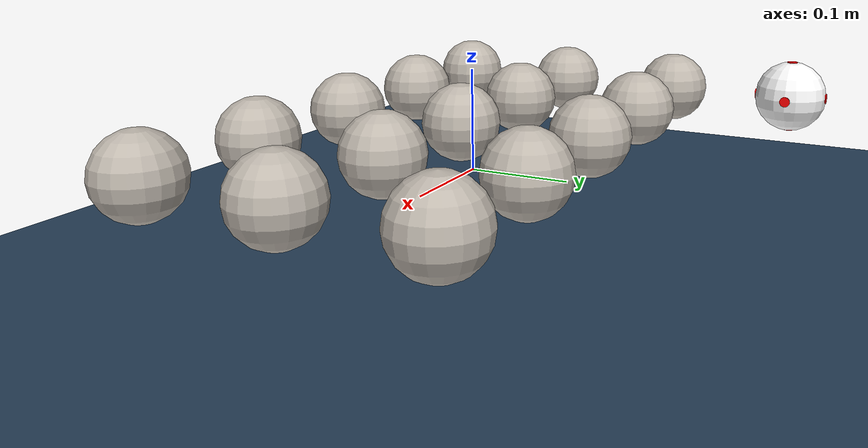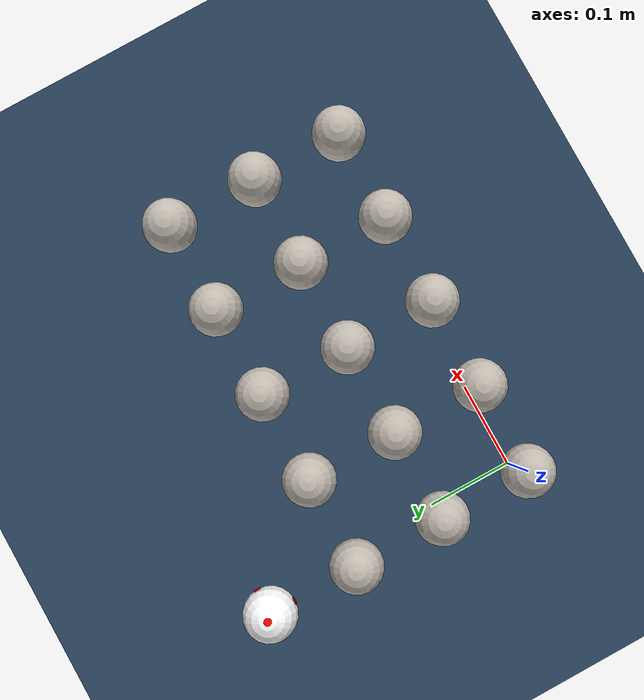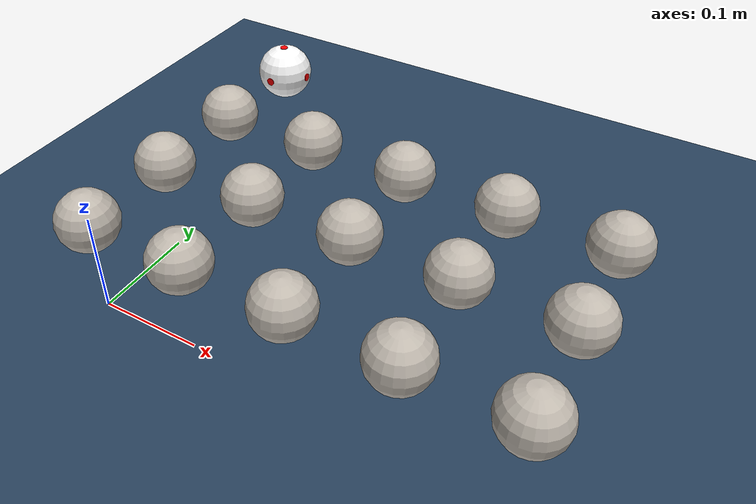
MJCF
<!-- Billiard ball definitions -->
<!-- https://mujoco.readthedocs.io/en/stable/XMLreference.html#asset-material -->
<mujoco>
  <include file="ball-definitions.xml" />

  <asset>
    <texture name="tex-grid" type="2d" builtin="checker" rgb1=".1 .2 .3"
     rgb2=".2 .3 .4" width="200" height="200" mark="none"/>

    <material name="mat-grid" texture="tex-grid" texrepeat="1 1"
     reflectance="0" emission="0.4"/>
  </asset>

  <worldbody>
    <light pos="0.2 0.15 3"/>
    <camera name="cam1" pos="0.2 0.15 0.7" />

    <geom type="plane" size="0 0 10" material="mat-grid" />

    <geom class="ball" pos="0.0 0 0.1" material="mat-billiards-01" />
    <geom class="ball" pos="0.1 0 0.1" material="mat-billiards-02" />
    <geom class="ball" pos="0.2 0 0.1" material="mat-billiards-03" />
    <geom class="ball" pos="0.3 0 0.1" material="mat-billiards-04" />
    <geom class="ball" pos="0.4 0 0.1" material="mat-billiards-05" />

    <geom class="ball" pos="0.0 0.1 0.1" material="mat-billiards-06" />
    <geom class="ball" pos="0.1 0.1 0.1" material="mat-billiards-07" />
    <geom class="ball" pos="0.2 0.1 0.1" material="mat-billiards-08" />
    <geom class="ball" pos="0.3 0.1 0.1" material="mat-billiards-09" />
    <geom class="ball" pos="0.4 0.1 0.1" material="mat-billiards-10" />

    <geom class="ball" pos="0.0 0.2 0.1" material="mat-billiards-11" />
    <geom class="ball" pos="0.1 0.2 0.1" material="mat-billiards-12" />
    <geom class="ball" pos="0.2 0.2 0.1" material="mat-billiards-13" />
    <geom class="ball" pos="0.3 0.2 0.1" material="mat-billiards-14" />
    <geom class="ball" pos="0.4 0.2 0.1" material="mat-billiards-15" />

    <!-- cue ball -->
    <body pos="0.0 0.3 0.1">
      <geom name="cue-ball" class="ball" pos="0 0 0" rgba="1 1 1 1" />
      <site type="cylinder" size="0.004 0.001" rgba="1 0 0 1" pos="0.0275 0 0" zaxis="1 0 0"/>
      <site type="cylinder" size="0.004 0.001" rgba="1 0 0 1" pos="-0.0275 0 0" zaxis="1 0 0"/>
      <site type="cylinder" size="0.004 0.001" rgba="1 0 0 1" pos="0 0.0275 0" zaxis="0 1 0"/>
      <site type="cylinder" size="0.004 0.001" rgba="1 0 0 1" pos="0 -0.0275 0" zaxis="0 1 0"/>
      <site type="cylinder" size="0.004 0.001" rgba="1 0 0 1" pos="0 0 0.0275" />
      <site type="cylinder" size="0.004 0.001" rgba="1 0 0 1" pos="0 0 -0.0275" />
    </body>

  </worldbody>

</mujoco>

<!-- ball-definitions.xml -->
<!-- Billiard ball definitions -->
<!-- Include to use -->
<mujoco>
  <compiler meshdir="img" texturedir="img"/>

  <asset>
    <texture name="tex-billiards-01" type="2d" file="billiard-ball-01.png"/>
    <texture name="tex-billiards-02" type="2d" file="billiard-ball-02.png"/>
    <texture name="tex-billiards-03" type="2d" file="billiard-ball-03.png"/>
    <texture name="tex-billiards-04" type="2d" file="billiard-ball-04.png"/>
    <texture name="tex-billiards-05" type="2d" file="billiard-ball-05.png"/>
    <texture name="tex-billiards-06" type="2d" file="billiard-ball-06.png"/>
    <texture name="tex-billiards-07" type="2d" file="billiard-ball-07.png"/>
    <texture name="tex-billiards-08" type="2d" file="billiard-ball-08.png"/>
    <texture name="tex-billiards-09" type="2d" file="billiard-ball-09.png"/>
    <texture name="tex-billiards-10" type="2d" file="billiard-ball-10.png"/>
    <texture name="tex-billiards-11" type="2d" file="billiard-ball-11.png"/>
    <texture name="tex-billiards-12" type="2d" file="billiard-ball-12.png"/>
    <texture name="tex-billiards-13" type="2d" file="billiard-ball-13.png"/>
    <texture name="tex-billiards-14" type="2d" file="billiard-ball-14.png"/>
    <texture name="tex-billiards-15" type="2d" file="billiard-ball-15.png"/>

    <material name="mat-billiards-01" texture="tex-billiards-01" />
    <material name="mat-billiards-02" texture="tex-billiards-02" />
    <material name="mat-billiards-03" texture="tex-billiards-03" />
    <material name="mat-billiards-04" texture="tex-billiards-04" />
    <material name="mat-billiards-05" texture="tex-billiards-05" />
    <material name="mat-billiards-06" texture="tex-billiards-06" />
    <material name="mat-billiards-07" texture="tex-billiards-07" />
    <material name="mat-billiards-08" texture="tex-billiards-08" />
    <material name="mat-billiards-09" texture="tex-billiards-09" />
    <material name="mat-billiards-10" texture="tex-billiards-10" />
    <material name="mat-billiards-11" texture="tex-billiards-11" />
    <material name="mat-billiards-12" texture="tex-billiards-12" />
    <material name="mat-billiards-13" texture="tex-billiards-13" />
    <material name="mat-billiards-14" texture="tex-billiards-14" />
    <material name="mat-billiards-15" texture="tex-billiards-15" />
  </asset>

  <default>
    <default class="ball">
      <!-- Billiard ball diameter: 56.5mm - 57.3mm, weight: 160g - 170g -->
      <geom type="sphere" size="0.0285" mass="0.165"
            friction="0 0 0" solref="-1e8 -10" />
    </default>
  </default>

  <worldbody>
  </worldbody>

</mujoco>
